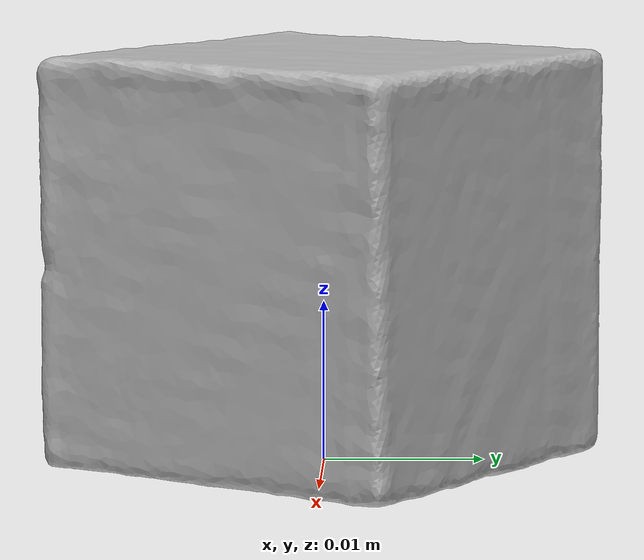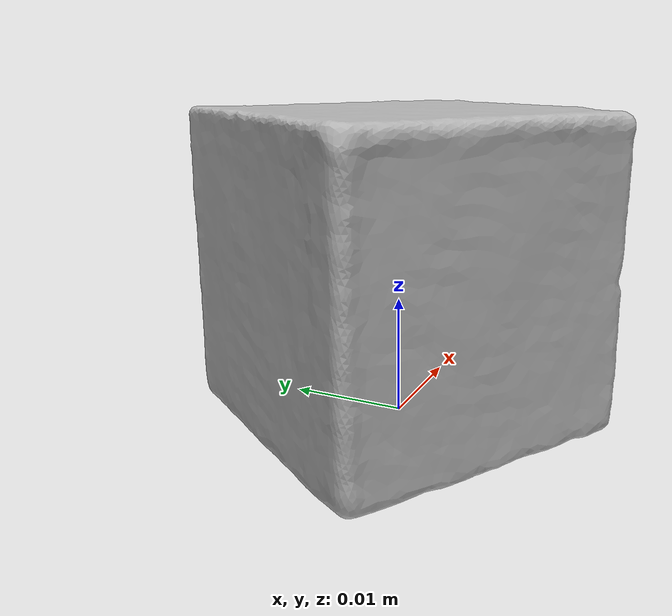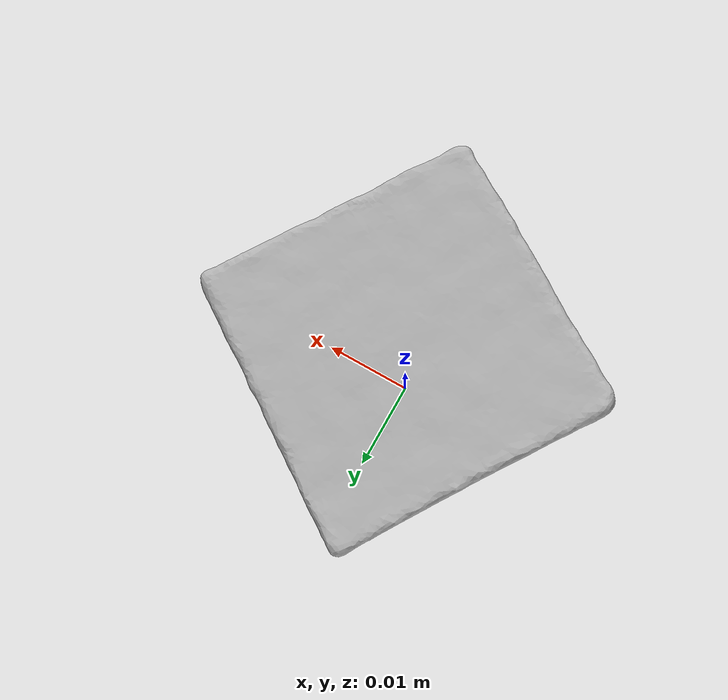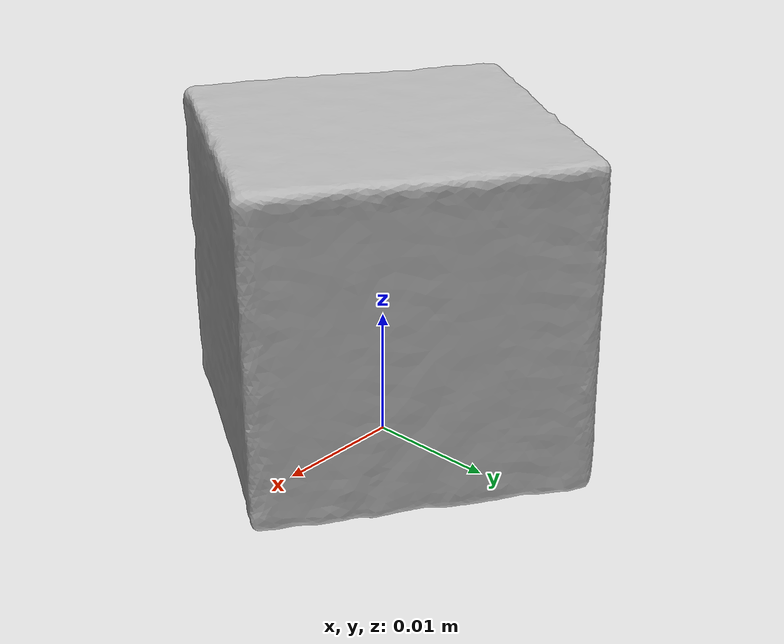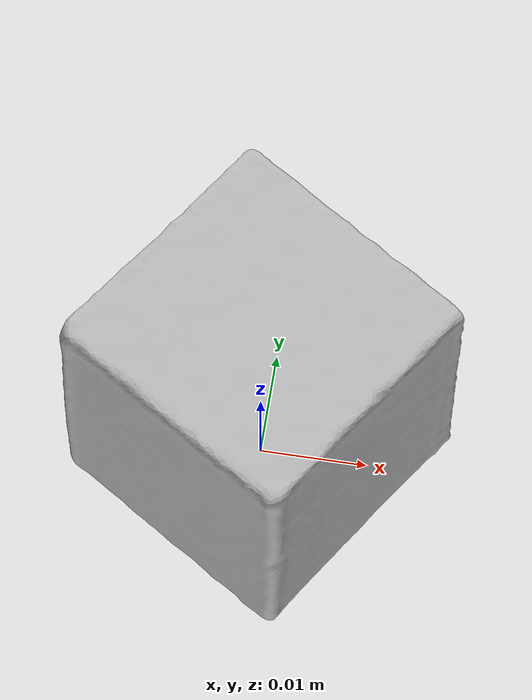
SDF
<?xml version="1.0" ?>
<sdf version='1.8'>
  <model name='ycb_070-b_colored_wood_blocks'>
    <link name='body'>
      <inertial>
        <mass>0.0221511880653</mass>
        <pose>-4.72639886e-05 2.74400999e-05 0.0128494338 0 0 0</pose>
        <inertia>
          <ixx>2.38935857923e-06</ixx>
          <ixy>-1.67754129002e-09</ixy>
          <ixz>-1.01671180471e-08</ixz>
          <iyy>2.38095232944e-06</iyy>
          <iyz>9.03271363311e-09</iyz>
          <izz>2.37886887489e-06</izz>
        </inertia>
      </inertial>
      <visual name='ycb_070-b_colored_wood_blocks_visual'>
        <pose>0.018774 0.008846 0.000216 0 0 0</pose>
        <geometry>
          <mesh>
            <uri>model://ycb_070-b_colored_wood_blocks/meshes/textured.dae</uri>
          </mesh>
        </geometry>
      </visual>
      <collision name='ycb_070-b_colored_wood_blocks_collision'>
        <pose>0.018774 0.008846 0.000216 0 0 0</pose>
        <geometry>
          <mesh>
            <uri>model://ycb_070-b_colored_wood_blocks/meshes/nontextured.stl</uri>
          </mesh>
        </geometry>
        <max_contacts>10</max_contacts>
        <surface>
          <contact>
            <ode>
              <kp>1e15</kp>
              <kd>1e13</kd>
            </ode>
          </contact>
        </surface>
      </collision>
    </link>
  </model>
</sdf>
